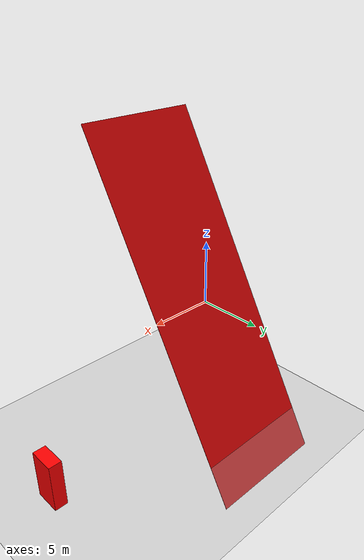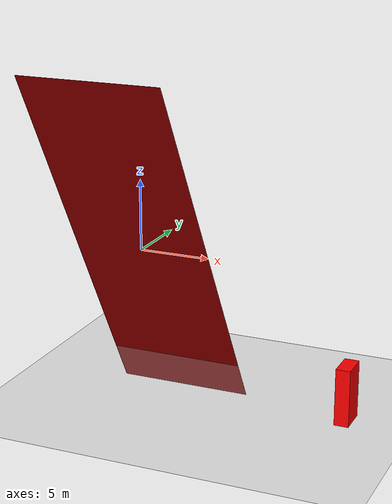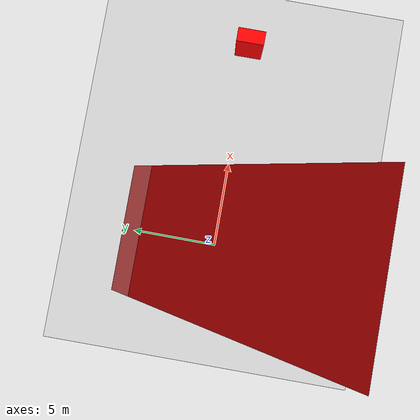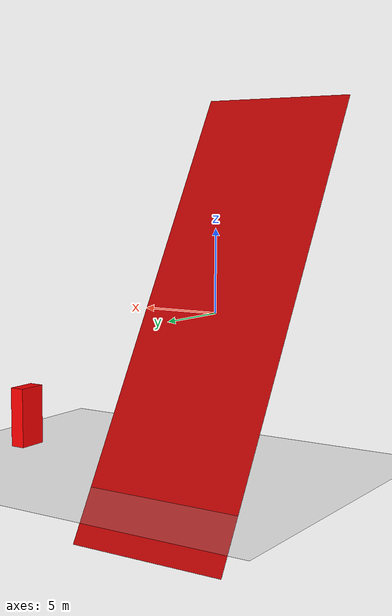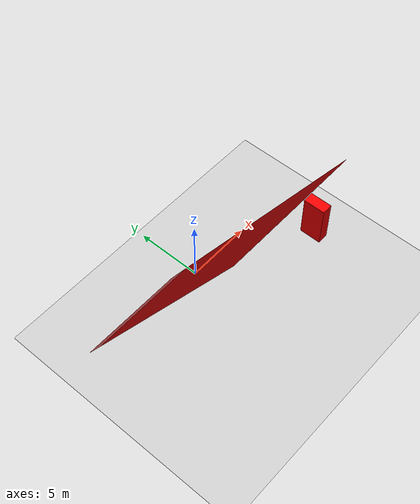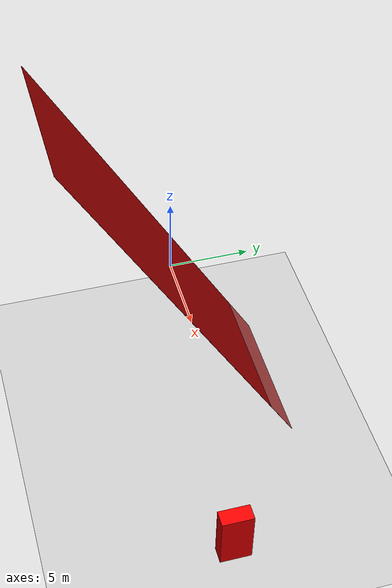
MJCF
<mujoco>
        <option gravity="0 0 -9.81"/>
        <worldbody>
            <light diffuse="0.5 0.5 0.5" pos="0 0 3" dir="0 0 -1"/>

            <!-- Inclined Plane -->
            <body name="incline" pos="0 0 0">
                <geom type="plane" size="5 15 0.1" rgba="0.7 0 0 1" friction="0.371 0.371 0.371" quat="0.5 0.86 0 0"/>
            </body>

            <!-- Big Plane -->
            <body name="surface" pos="-10 0 -10">
                <geom type="plane" size="30 30 0.1" rgba="0.7 0.7 0.7 1" friction="1 1 1"/>
            </body>

            <!-- Box of mass 10 kg -->
            <body name="box" pos="15 0 -8">  <!-- Positioned above the ground -->
            <joint type="free"/>  <!-- Allows free movement and rotation -->
            <geom name="box_geom" type="box" size="0.5 1 2" density="10" rgba="1 0 0 1"/>
            <!-- Density chosen so mass = 10 kg -->
        </body>
        </worldbody>
</mujoco>
